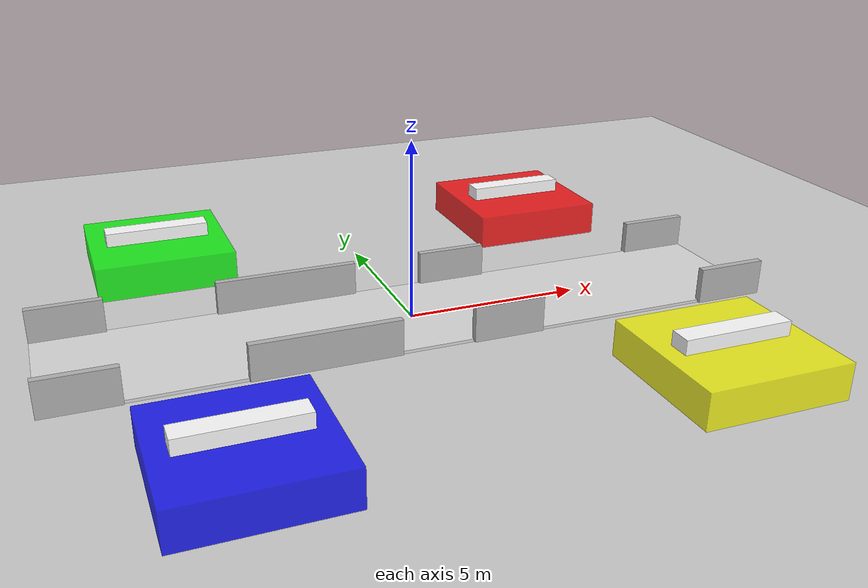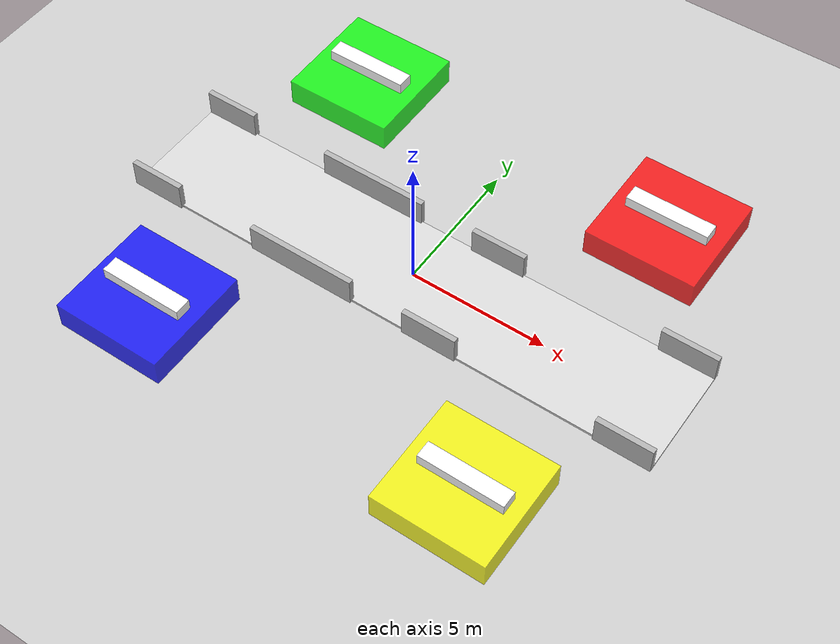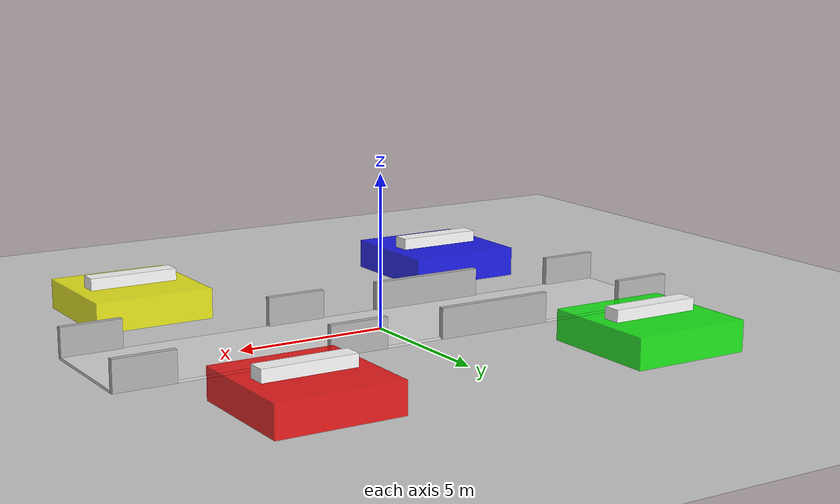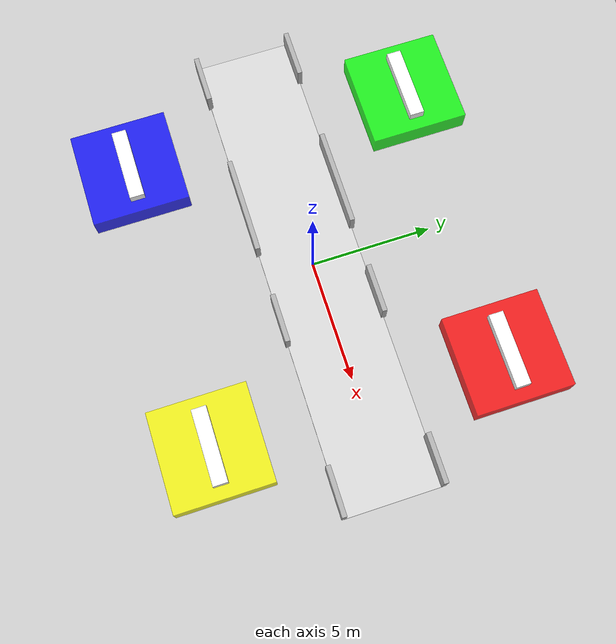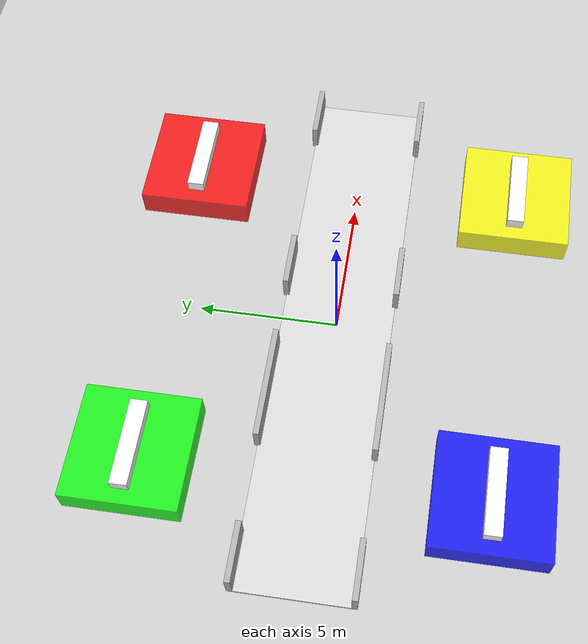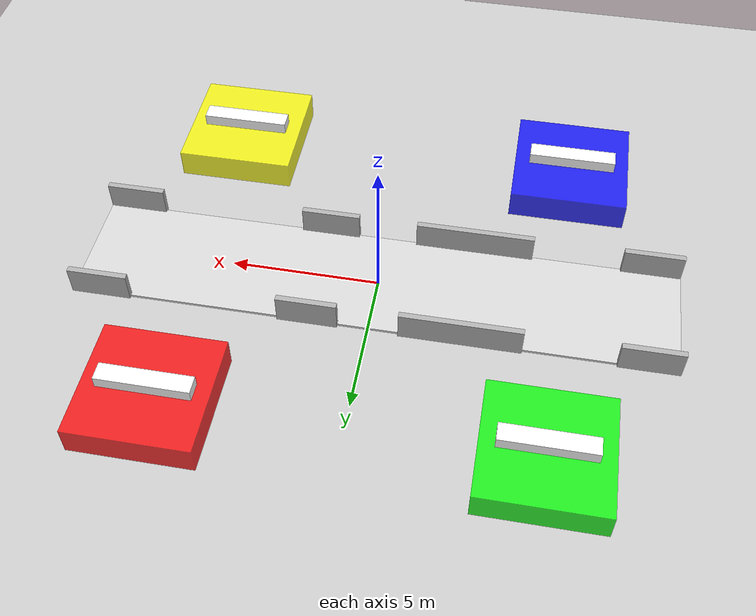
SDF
<?xml version="1.0" ?>
<sdf version="1.6">
  <world name="hospital_simple">
    <include><uri>model://ground_plane</uri></include>
    <include><uri>model://sun</uri></include>
    <physics type="ode">
      <real_time_update_rate>1000</real_time_update_rate>
      <max_step_size>0.001</max_step_size>
    </physics>

    <!-- PHARMACY (NW) - Green box at (-6, +6) -->
    <model name="PHARMACY">
      <static>true</static>
      <pose>-6 6 0.5 0 0 0</pose>
      <link name="body">
        <visual name="visual">
          <geometry><box><size>4 4 1</size></box></geometry>
          <material><ambient>0 1 0 0.8</ambient></material>
        </visual>
        <collision name="collision">
          <geometry><box><size>4 4 1</size></box></geometry>
        </collision>
      </link>
    </model>

    <!-- ICU (NE) - Red box at (+6, +6) -->
    <model name="ICU">
      <static>true</static>
      <pose>6 6 0.5 0 0 0</pose>
      <link name="body">
        <visual name="visual">
          <geometry><box><size>4 4 1</size></box></geometry>
          <material><ambient>1 0 0 0.8</ambient></material>
        </visual>
        <collision name="collision">
          <geometry><box><size>4 4 1</size></box></geometry>
        </collision>
      </link>
    </model>

    <!-- RECEPTION (SW) - Blue box at (-6, -6) -->
    <model name="RECEPTION">
      <static>true</static>
      <pose>-6 -6 0.5 0 0 0</pose>
      <link name="body">
        <visual name="visual">
          <geometry><box><size>4 4 1</size></box></geometry>
          <material><ambient>0 0 1 0.8</ambient></material>
        </visual>
        <collision name="collision">
          <geometry><box><size>4 4 1</size></box></geometry>
        </collision>
      </link>
    </model>

    <!-- WARD (SE) - Yellow box at (+6, -6) -->
    <model name="WARD">
      <static>true</static>
      <pose>6 -6 0.5 0 0 0</pose>
      <link name="body">
        <visual name="visual">
          <geometry><box><size>4 4 1</size></box></geometry>
          <material><ambient>1 1 0 0.8</ambient></material>
        </visual>
        <collision name="collision">
          <geometry><box><size>4 4 1</size></box></geometry>
        </collision>
      </link>
    </model>

    <!-- NAME SIGNS on top of each room -->
    <!-- PHARMACY sign -->
    <model name="sign_pharmacy">
      <static>true</static>
      <pose>-6 6 1.2 0 0 0</pose>
      <link name="link">
        <visual name="v">
          <geometry><box><size>3 0.6 0.4</size></box></geometry>
          <material><ambient>1 1 1 1</ambient></material>
        </visual>
      </link>
    </model>
    <!-- ICU sign -->
    <model name="sign_icu">
      <static>true</static>
      <pose>6 6 1.2 0 0 0</pose>
      <link name="link">
        <visual name="v">
          <geometry><box><size>3 0.6 0.4</size></box></geometry>
          <material><ambient>1 1 1 1</ambient></material>
        </visual>
      </link>
    </model>
    <!-- RECEPTION sign -->
    <model name="sign_reception">
      <static>true</static>
      <pose>-6 -6 1.2 0 0 0</pose>
      <link name="link">
        <visual name="v">
          <geometry><box><size>3 0.6 0.4</size></box></geometry>
          <material><ambient>1 1 1 1</ambient></material>
        </visual>
      </link>
    </model>
    <!-- WARD sign -->
    <model name="sign_ward">
      <static>true</static>
      <pose>6 -6 1.2 0 0 0</pose>
      <link name="link">
        <visual name="v">
          <geometry><box><size>3 0.6 0.4</size></box></geometry>
          <material><ambient>1 1 1 1</ambient></material>
        </visual>
      </link>
    </model>

    <!-- CORRIDOR WALLS with gaps for robot to pass through -->
    <!-- North corridor wall: gap at x=-6 (for pharmacy) and x=+6 (for ICU) -->
    <!-- North wall LEFT segment: x=-10 to x=-8 -->
    <model name="wall_n1"><static>true</static><pose>-9 2 0.5 0 0 0</pose>
      <link name="body"><visual name="v"><geometry><box><size>2 0.2 1</size></box></geometry>
        <material><ambient>0.7 0.7 0.7 1</ambient></material></visual>
        <collision name="c"><geometry><box><size>2 0.2 1</size></box></geometry></collision>
      </link></model>
    <!-- North wall: x=-5 to x=-1 (gap at -8 to -4 for pharmacy entry) -->
    <model name="wall_n2"><static>true</static><pose>-3 2 0.5 0 0 0</pose>
      <link name="body"><visual name="v"><geometry><box><size>4 0.2 1</size></box></geometry>
        <material><ambient>0.7 0.7 0.7 1</ambient></material></visual>
        <collision name="c"><geometry><box><size>4 0.2 1</size></box></geometry></collision>
      </link></model>
    <!-- North wall: x=+1 to x=+4 (gap at +4 to +8 for ICU entry) -->
    <model name="wall_n3"><static>true</static><pose>2 2 0.5 0 0 0</pose>
      <link name="body"><visual name="v"><geometry><box><size>2 0.2 1</size></box></geometry>
        <material><ambient>0.7 0.7 0.7 1</ambient></material></visual>
        <collision name="c"><geometry><box><size>2 0.2 1</size></box></geometry></collision>
      </link></model>
    <!-- North wall RIGHT segment: x=+8 to x=+10 -->
    <model name="wall_n4"><static>true</static><pose>9 2 0.5 0 0 0</pose>
      <link name="body"><visual name="v"><geometry><box><size>2 0.2 1</size></box></geometry>
        <material><ambient>0.7 0.7 0.7 1</ambient></material></visual>
        <collision name="c"><geometry><box><size>2 0.2 1</size></box></geometry></collision>
      </link></model>

    <!-- South corridor wall: same pattern -->
    <model name="wall_s1"><static>true</static><pose>-9 -2 0.5 0 0 0</pose>
      <link name="body"><visual name="v"><geometry><box><size>2 0.2 1</size></box></geometry>
        <material><ambient>0.7 0.7 0.7 1</ambient></material></visual>
        <collision name="c"><geometry><box><size>2 0.2 1</size></box></geometry></collision>
      </link></model>
    <model name="wall_s2"><static>true</static><pose>-3 -2 0.5 0 0 0</pose>
      <link name="body"><visual name="v"><geometry><box><size>4 0.2 1</size></box></geometry>
        <material><ambient>0.7 0.7 0.7 1</ambient></material></visual>
        <collision name="c"><geometry><box><size>4 0.2 1</size></box></geometry></collision>
      </link></model>
    <model name="wall_s3"><static>true</static><pose>2 -2 0.5 0 0 0</pose>
      <link name="body"><visual name="v"><geometry><box><size>2 0.2 1</size></box></geometry>
        <material><ambient>0.7 0.7 0.7 1</ambient></material></visual>
        <collision name="c"><geometry><box><size>2 0.2 1</size></box></geometry></collision>
      </link></model>
    <model name="wall_s4"><static>true</static><pose>9 -2 0.5 0 0 0</pose>
      <link name="body"><visual name="v"><geometry><box><size>2 0.2 1</size></box></geometry>
        <material><ambient>0.7 0.7 0.7 1</ambient></material></visual>
        <collision name="c"><geometry><box><size>2 0.2 1</size></box></geometry></collision>
      </link></model>

    <!-- CORRIDOR FLOOR -->
    <model name="corridor_floor">
      <static>true</static>
      <pose>0 0 0.01 0 0 0</pose>
      <link name="body">
        <visual name="visual">
          <geometry><box><size>20 4 0.1</size></box></geometry>
          <material><ambient>0.85 0.85 0.85 1</ambient></material>
        </visual>
      </link>
    </model>

  </world>
</sdf>
